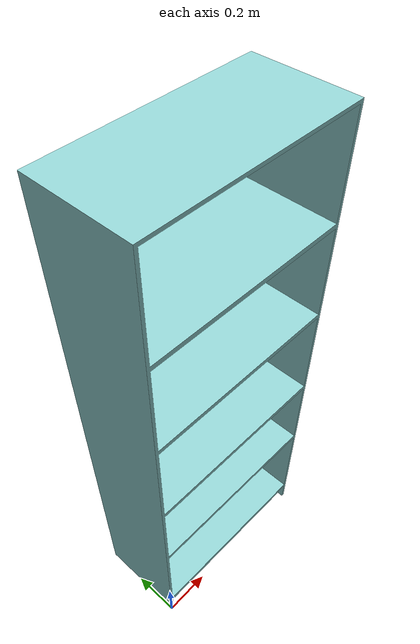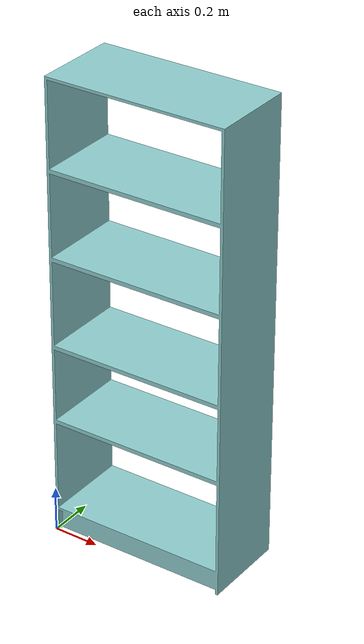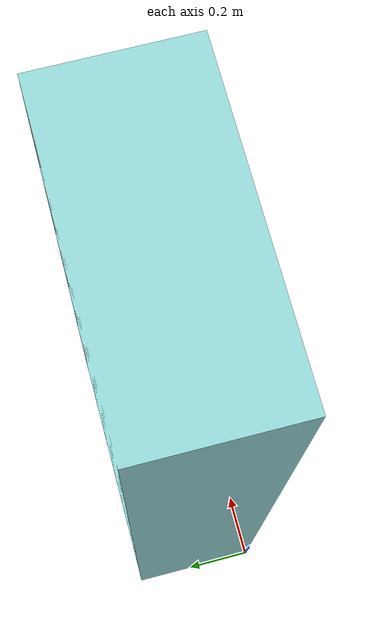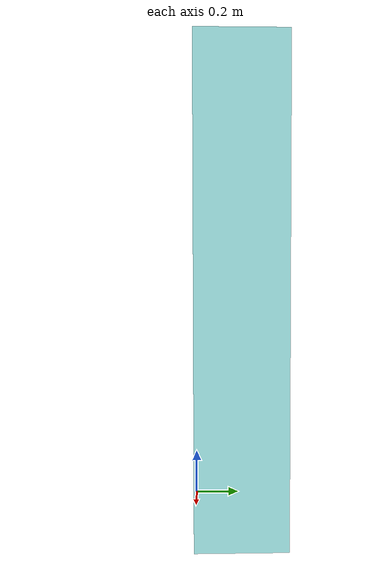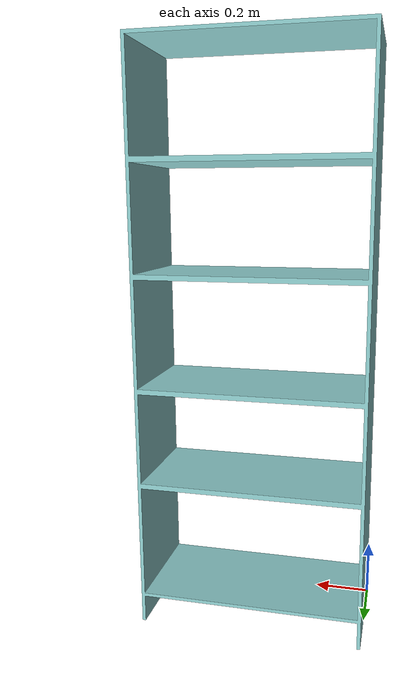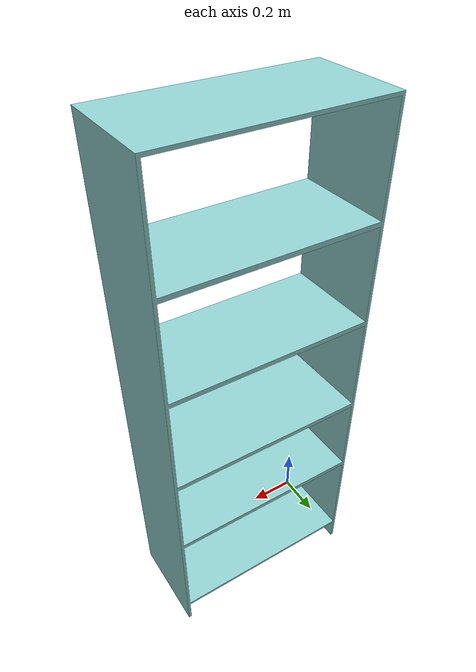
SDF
<?xml version="1.0"?>
<sdf version='1.6'>
  <model name='Shelf_ML'>
    <link name='Shelf_ML'>
      <pose frame=''>0 0 0 0 -0 0</pose>
      <inertial>
        <pose frame=''>0.398 0.1831 1.0191 0 -0 0</pose>
        <mass>47.731</mass>
        <inertia>
          <ixx>18.507</ixx>
          <ixy>1.2585e-15</ixy>
          <ixz>2.6751e-15</ixz>
          <iyy>22.206</iyy>
          <iyz>0.22676</iyz>
          <izz>4.8568</izz>
        </inertia>
      </inertial>
      <collision name='Shelf_ML_collision'>
        <pose frame=''>0 0 0 1.5708 -0 0</pose>
        <geometry>
          <mesh>
            <scale>1 1 1</scale>
            <uri>model://Shelf_ML/meshes/Shelf_ML.dae</uri>
          </mesh>
        </geometry>
      </collision>
      <visual name='Shelf_ML_visual'>
        <pose frame=''>0 0 0 1.5708 -0 0</pose>
        <geometry>
          <mesh>
            <scale>1 1 1</scale>
            <uri>model://Shelf_ML/meshes/Shelf_ML.dae</uri>
          </mesh>
        </geometry>
      </visual>
    </link>
  </model>
</sdf>
